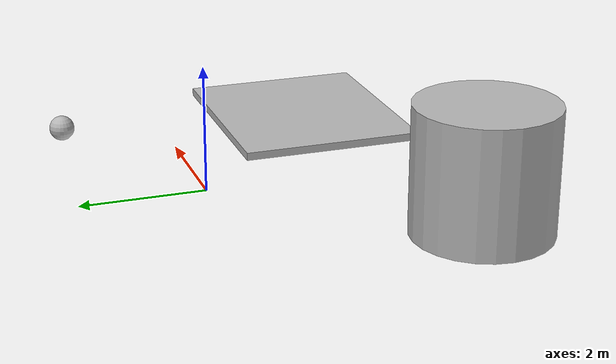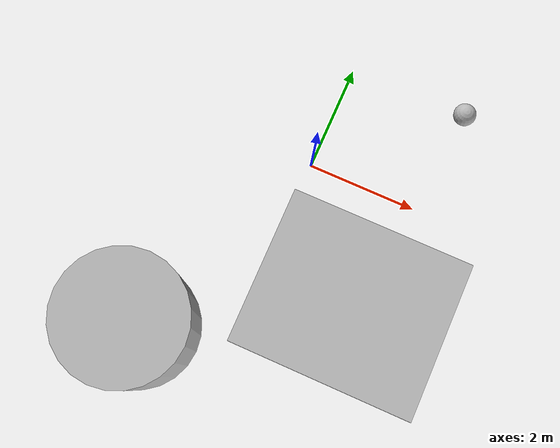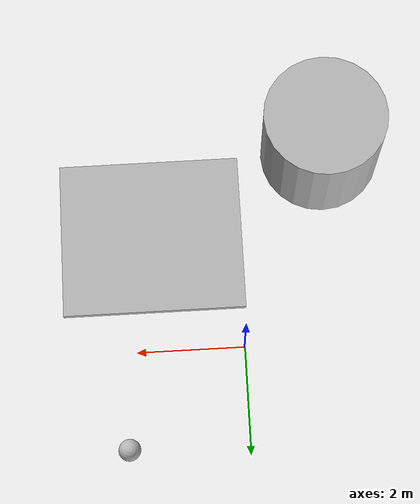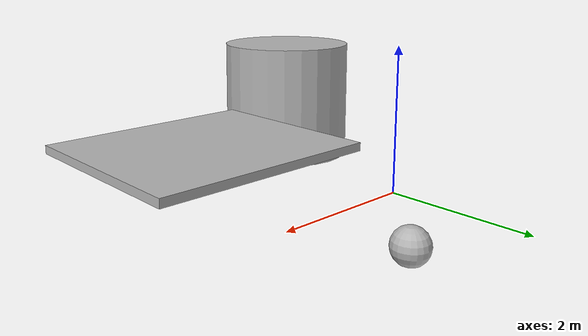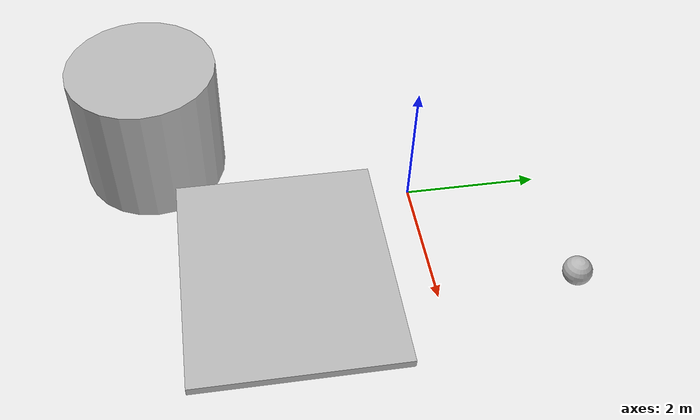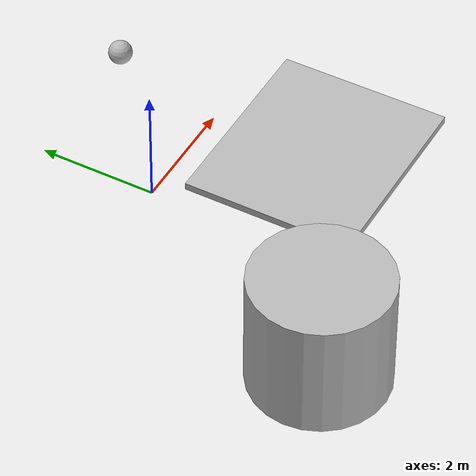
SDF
<sdf version="1.6">
 <world name="default">
  <light name="sun" type="directional">
   <pose>0 0 10 0 -0 0</pose>
   <diffuse>0.8 0.8 0.8 1</diffuse>
   <specular>0.1 0.1 0.1 1</specular>
   <attenuation>
    <range>1000</range>
    <constant>0.9</constant>
    <linear>0.01</linear>
    <quadratic>0.001</quadratic>
   </attenuation>
   <direction>-0.5 0.5 -1</direction>
  </light>
  <model name="box">
   <pose>1.61196 -2.08959 0.499859 9.8e-05 -0 0</pose>
   <link name="link">
    <inertial>
     <mass>1</mass>
     <inertia>
      <ixx>0.166667</ixx>
      <ixy>0</ixy>
      <ixz>0</ixz>
      <iyy>0.166667</iyy>
      <iyz>0</iyz>
      <izz>0.166667</izz>
     </inertia>
    </inertial>
    <collision name="collision"><geometry><box><size>3.34637 2.87999 0.123722</size></box></geometry></collision>
    <visual name="visual"><geometry><box><size>3.34637 2.87999 0.123722</size></box></geometry></visual>
    <gravity>0</gravity>
   </link>
  </model>
  <model name="sphere">
   <pose>2.17152 1.84984 0.5 0 -0 0</pose>
   <link name="link">
    <inertial>
     <mass>1</mass>
     <inertia><ixx>0.1</ixx><ixy>0</ixy><ixz>0</ixz><iyy>0.1</iyy><iyz>0</iyz><izz>0.1</izz></inertia>
    </inertial>
    <collision name="collision"><geometry><sphere><radius>0.201337</radius></sphere></geometry></collision>
    <visual name="visual"><geometry><sphere><radius>0.201337</radius></sphere></geometry></visual>
    <gravity>0</gravity>
   </link>
  </model>
  <model name="cylinder">
   <pose>-1.70923 -3.91252 0.5 0 -0 0</pose>
   <link name="link">
    <inertial>
     <mass>1</mass>
     <inertia><ixx>0.145833</ixx><ixy>0</ixy><ixz>0</ixz><iyy>0.145833</iyy><iyz>0</iyz><izz>0.125</izz></inertia>
    </inertial>
    <collision name="collision">
     <geometry><cylinder><radius>1.14845</radius><length>2.09564</length></cylinder></geometry>
    </collision>
    <visual name="visual">
     <geometry><cylinder><radius>1.14845</radius><length>2.09564</length></cylinder></geometry>
    </visual>
    <gravity>0</gravity>
   </link>
  </model>
 </world>
</sdf>
